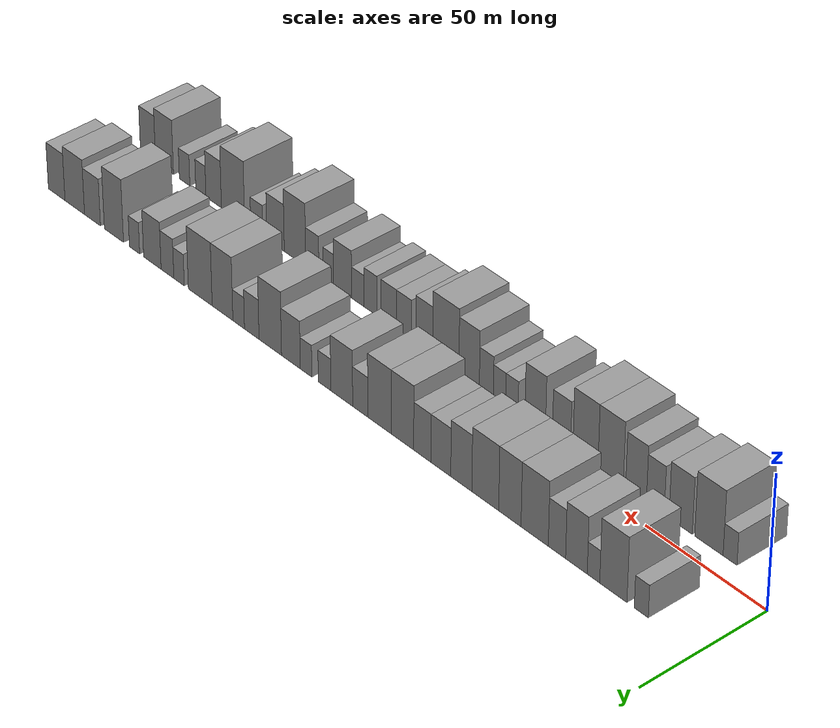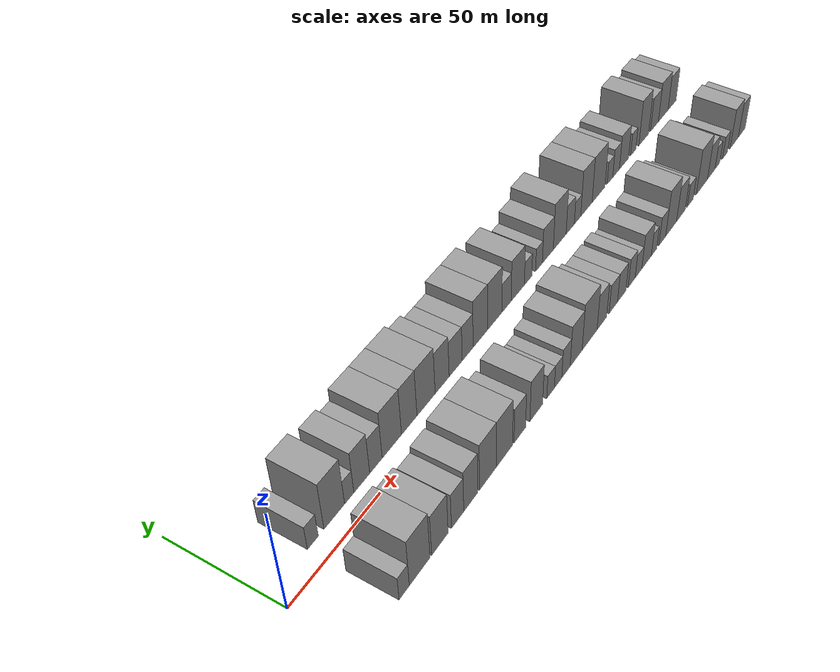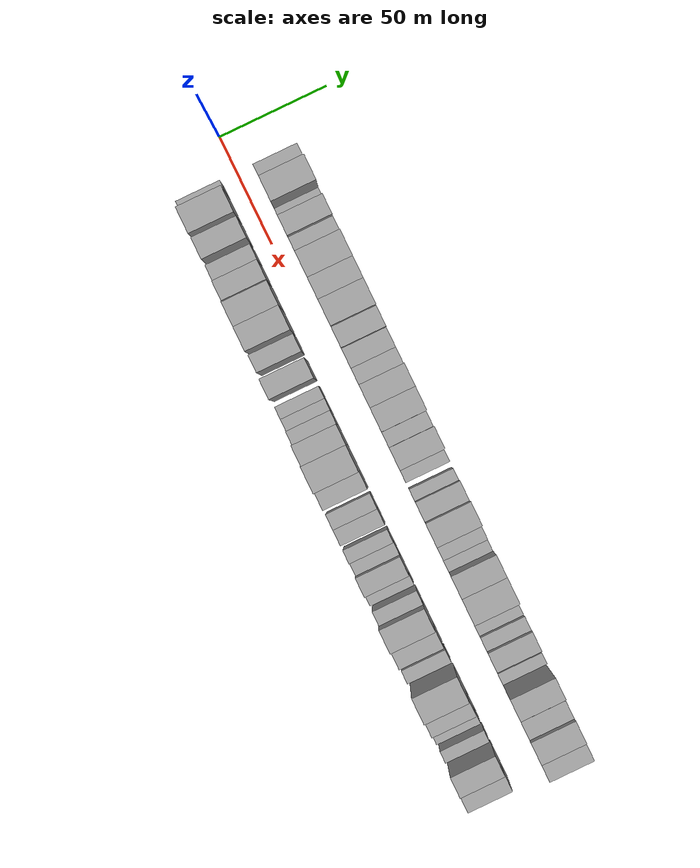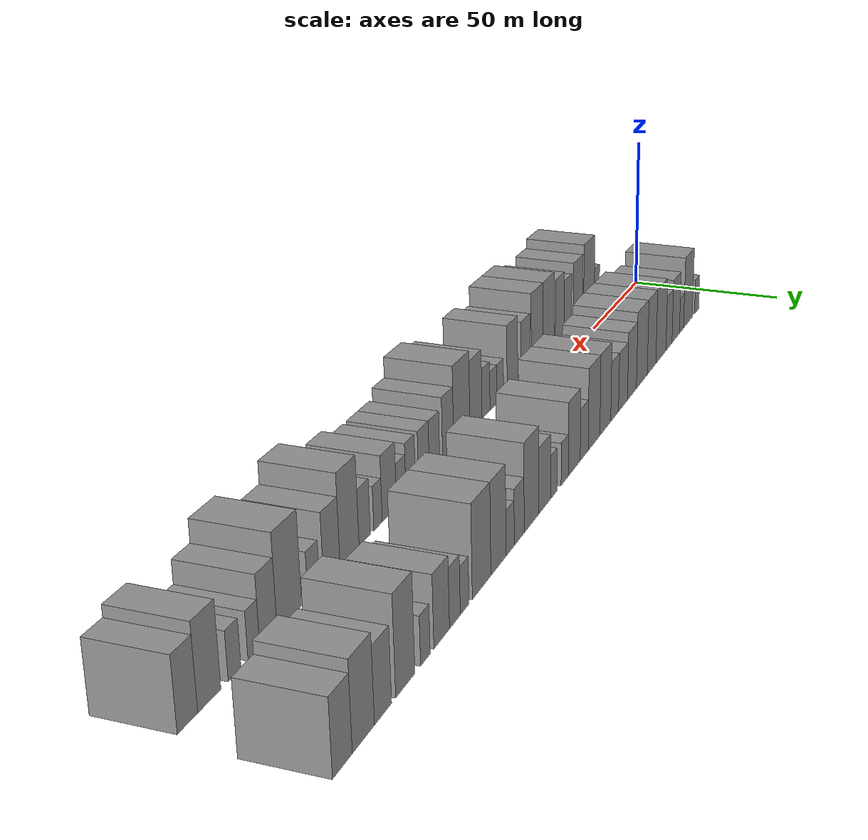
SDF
<sdf version="1.6">
 <world name="default">
  <scene>
   <sky><clouds><speed>12</speed></clouds></sky>
   <ambient>0.4 0.4 0.4 1</ambient>
   <background>0.7 0.7 0.7 1</background>
   <shadows>1</shadows>
  </scene>
  <gravity>0 0 -9.8066</gravity>
  <magnetic_field>6e-06 2.3e-05 -4.2e-05</magnetic_field>
  <physics default="0" name="default_physics" type="ode">
   <ode>
    <solver>
     <type>quick</type>
     <iters>10</iters>
     <sor>1.0</sor>
     <use_dynamic_moi_rescaling>0</use_dynamic_moi_rescaling>
    </solver>
    <constraints>
     <cfm>0</cfm>
     <erp>0.2</erp>
     <contact_max_correcting_vel>100</contact_max_correcting_vel>
     <contact_surface_layer>0.001</contact_surface_layer>
    </constraints>
   </ode>
   <max_step_size>0.004</max_step_size>
   <real_time_factor>1</real_time_factor>
   <real_time_update_rate>250</real_time_update_rate>
  </physics>
  <light name="sun" type="directional">
   <pose>0 0 10 0 0 0</pose>
   <diffuse>0.8 0.8 0.8 1</diffuse>
   <specular>0.2 0.2 0.2 1</specular>
   <attenuation>
    <range>1000</range>
    <constant>0.9</constant>
    <linear>0.01</linear>
    <quadratic>0.001</quadratic>
   </attenuation>
   <direction>-0.5 0.1 -0.9</direction>
  </light>
  <model name="building_1">
   <static>1</static>
   <pose>22.8882 17.5000 0 0.000000 0.000000 1.570796</pose>
   <link name="link">
    <pose>0 0 6.00 0 0 0</pose>
    <collision name="collision"><geometry><box><size>20.0000 5.7763 12.0000</size></box></geometry></collision>
    <visual name="visual">
     <cast_shadows>0</cast_shadows>
     <geometry><box><size>20.0000 5.7763 12.0000</size></box></geometry>
     <material>
      <script>
       <uri>model://grey_wall/materials/scripts</uri>
       <uri>model://grey_wall/materials/textures</uri>
       <name>vrc/grey_wall</name>
      </script>
     </material>
    </visual>
   </link>
  </model>
  <model name="building_2">
   <static>1</static>
   <pose>34.4393 17.5000 0 0.000000 0.000000 1.570796</pose>
   <link name="link">
    <pose>0 0 12.00 0 0 0</pose>
    <collision name="collision"><geometry><box><size>20.0000 11.3260 24.0000</size></box></geometry></collision>
    <visual name="visual">
     <cast_shadows>0</cast_shadows>
     <geometry><box><size>20.0000 11.3260 24.0000</size></box></geometry>
     <material>
      <script>
       <uri>model://grey_wall/materials/scripts</uri>
       <uri>model://grey_wall/materials/textures</uri>
       <name>vrc/grey_wall</name>
      </script>
     </material>
    </visual>
   </link>
  </model>
  <model name="building_3">
   <static>1</static>
   <pose>42.7061 17.5000 0 0.000000 0.000000 1.570796</pose>
   <link name="link">
    <pose>0 0 6.00 0 0 0</pose>
    <collision name="collision"><geometry><box><size>20.0000 5.2077 12.0000</size></box></geometry></collision>
    <visual name="visual">
     <cast_shadows>0</cast_shadows>
     <geometry><box><size>20.0000 5.2077 12.0000</size></box></geometry>
     <material>
      <script>
       <uri>model://grey_wall/materials/scripts</uri>
       <uri>model://grey_wall/materials/textures</uri>
       <name>vrc/grey_wall</name>
      </script>
     </material>
    </visual>
   </link>
  </model>
  <model name="building_4">
   <static>1</static>
   <pose>49.8736 17.5000 0 0.000000 0.000000 1.570796</pose>
   <link name="link">
    <pose>0 0 10.50 0 0 0</pose>
    <collision name="collision"><geometry><box><size>20.0000 9.1274 21.0000</size></box></geometry></collision>
    <visual name="visual">
     <cast_shadows>0</cast_shadows>
     <geometry><box><size>20.0000 9.1274 21.0000</size></box></geometry>
     <material>
      <script>
       <uri>model://grey_wall/materials/scripts</uri>
       <uri>model://grey_wall/materials/textures</uri>
       <name>vrc/grey_wall</name>
      </script>
     </material>
    </visual>
   </link>
  </model>
  <model name="building_5">
   <static>1</static>
   <pose>58.1065 17.5000 0 0.000000 0.000000 1.570796</pose>
   <link name="link">
    <pose>0 0 9.00 0 0 0</pose>
    <collision name="collision"><geometry><box><size>20.0000 7.3383 18.0000</size></box></geometry></collision>
    <visual name="visual">
     <cast_shadows>0</cast_shadows>
     <geometry><box><size>20.0000 7.3383 18.0000</size></box></geometry>
     <material>
      <script>
       <uri>model://grey_wall/materials/scripts</uri>
       <uri>model://grey_wall/materials/textures</uri>
       <name>vrc/grey_wall</name>
      </script>
     </material>
    </visual>
   </link>
  </model>
  <model name="building_6">
   <static>1</static>
   <pose>67.6058 17.5000 0 0.000000 0.000000 1.570796</pose>
   <link name="link">
    <pose>0 0 12.00 0 0 0</pose>
    <collision name="collision"><geometry><box><size>20.0000 11.6603 24.0000</size></box></geometry></collision>
    <visual name="visual">
     <cast_shadows>0</cast_shadows>
     <geometry><box><size>20.0000 11.6603 24.0000</size></box></geometry>
     <material>
      <script>
       <uri>model://grey_wall/materials/scripts</uri>
       <uri>model://grey_wall/materials/textures</uri>
       <name>vrc/grey_wall</name>
      </script>
     </material>
    </visual>
   </link>
  </model>
  <model name="building_7">
   <static>1</static>
   <pose>78.2580 17.5000 0 0.000000 0.000000 1.570796</pose>
   <link name="link">
    <pose>0 0 12.00 0 0 0</pose>
    <collision name="collision"><geometry><box><size>20.0000 9.6441 24.0000</size></box></geometry></collision>
    <visual name="visual">
     <cast_shadows>0</cast_shadows>
     <geometry><box><size>20.0000 9.6441 24.0000</size></box></geometry>
     <material>
      <script>
       <uri>model://grey_wall/materials/scripts</uri>
       <uri>model://grey_wall/materials/textures</uri>
       <name>vrc/grey_wall</name>
      </script>
     </material>
    </visual>
   </link>
  </model>
  <model name="building_8">
   <static>1</static>
   <pose>88.9379 17.5000 0 0.000000 0.000000 1.570796</pose>
   <link name="link">
    <pose>0 0 12.00 0 0 0</pose>
    <collision name="collision"><geometry><box><size>20.0000 11.7156 24.0000</size></box></geometry></collision>
    <visual name="visual">
     <cast_shadows>0</cast_shadows>
     <geometry><box><size>20.0000 11.7156 24.0000</size></box></geometry>
     <material>
      <script>
       <uri>model://grey_wall/materials/scripts</uri>
       <uri>model://grey_wall/materials/textures</uri>
       <name>vrc/grey_wall</name>
      </script>
     </material>
    </visual>
   </link>
  </model>
  <model name="building_9">
   <static>1</static>
   <pose>99.4407 17.5000 0 0.000000 0.000000 1.570796</pose>
   <link name="link">
    <pose>0 0 10.50 0 0 0</pose>
    <collision name="collision"><geometry><box><size>20.0000 9.2900 21.0000</size></box></geometry></collision>
    <visual name="visual">
     <cast_shadows>0</cast_shadows>
     <geometry><box><size>20.0000 9.2900 21.0000</size></box></geometry>
     <material>
      <script>
       <uri>model://grey_wall/materials/scripts</uri>
       <uri>model://grey_wall/materials/textures</uri>
       <name>vrc/grey_wall</name>
      </script>
     </material>
    </visual>
   </link>
  </model>
  <model name="building_10">
   <static>1</static>
   <pose>108.5263 17.5000 0 0.000000 0.000000 1.570796</pose>
   <link name="link">
    <pose>0 0 9.00 0 0 0</pose>
    <collision name="collision"><geometry><box><size>20.0000 8.8813 18.0000</size></box></geometry></collision>
    <visual name="visual">
     <cast_shadows>0</cast_shadows>
     <geometry><box><size>20.0000 8.8813 18.0000</size></box></geometry>
     <material>
      <script>
       <uri>model://grey_wall/materials/scripts</uri>
       <uri>model://grey_wall/materials/textures</uri>
       <name>vrc/grey_wall</name>
      </script>
     </material>
    </visual>
   </link>
  </model>
  <model name="building_11">
   <static>1</static>
   <pose>116.7841 17.5000 0 0.000000 0.000000 1.570796</pose>
   <link name="link">
    <pose>0 0 9.00 0 0 0</pose>
    <collision name="collision"><geometry><box><size>20.0000 7.6343 18.0000</size></box></geometry></collision>
    <visual name="visual">
     <cast_shadows>0</cast_shadows>
     <geometry><box><size>20.0000 7.6343 18.0000</size></box></geometry>
     <material>
      <script>
       <uri>model://grey_wall/materials/scripts</uri>
       <uri>model://grey_wall/materials/textures</uri>
       <name>vrc/grey_wall</name>
      </script>
     </material>
    </visual>
   </link>
  </model>
  <model name="building_12">
   <static>1</static>
   <pose>125.7066 17.5000 0 0.000000 0.000000 1.570796</pose>
   <link name="link">
    <pose>0 0 12.00 0 0 0</pose>
    <collision name="collision"><geometry><box><size>20.0000 10.2106 24.0000</size></box></geometry></collision>
    <visual name="visual">
     <cast_shadows>0</cast_shadows>
     <geometry><box><size>20.0000 10.2106 24.0000</size></box></geometry>
     <material>
      <script>
       <uri>model://grey_wall/materials/scripts</uri>
       <uri>model://grey_wall/materials/textures</uri>
       <name>vrc/grey_wall</name>
      </script>
     </material>
    </visual>
   </link>
  </model>
  <model name="building_13">
   <static>1</static>
   <pose>136.1123 17.5000 0 0.000000 0.000000 1.570796</pose>
   <link name="link">
    <pose>0 0 12.00 0 0 0</pose>
    <collision name="collision"><geometry><box><size>20.0000 10.6009 24.0000</size></box></geometry></collision>
    <visual name="visual">
     <cast_shadows>0</cast_shadows>
     <geometry><box><size>20.0000 10.6009 24.0000</size></box></geometry>
     <material>
      <script>
       <uri>model://grey_wall/materials/scripts</uri>
       <uri>model://grey_wall/materials/textures</uri>
       <name>vrc/grey_wall</name>
      </script>
     </material>
    </visual>
   </link>
  </model>
  <model name="building_14">
   <static>1</static>
   <pose>144.8784 17.5000 0 0.000000 0.000000 1.570796</pose>
   <link name="link">
    <pose>0 0 7.50 0 0 0</pose>
    <collision name="collision"><geometry><box><size>20.0000 6.9312 15.0000</size></box></geometry></collision>
    <visual name="visual">
     <cast_shadows>0</cast_shadows>
     <geometry><box><size>20.0000 6.9312 15.0000</size></box></geometry>
     <material>
      <script>
       <uri>model://grey_wall/materials/scripts</uri>
       <uri>model://grey_wall/materials/textures</uri>
       <name>vrc/grey_wall</name>
      </script>
     </material>
    </visual>
   </link>
  </model>
  <model name="building_15">
   <static>1</static>
   <pose>153.4065 17.5000 0 0.000000 0.000000 1.570796</pose>
   <link name="link">
    <pose>0 0 10.50 0 0 0</pose>
    <collision name="collision"><geometry><box><size>20.0000 10.1251 21.0000</size></box></geometry></collision>
    <visual name="visual">
     <cast_shadows>0</cast_shadows>
     <geometry><box><size>20.0000 10.1251 21.0000</size></box></geometry>
     <material>
      <script>
       <uri>model://grey_wall/materials/scripts</uri>
       <uri>model://grey_wall/materials/textures</uri>
       <name>vrc/grey_wall</name>
      </script>
     </material>
    </visual>
   </link>
  </model>
  <model name="building_16">
   <static>1</static>
   <pose>161.3831 17.5000 0 0.000000 0.000000 1.570796</pose>
   <link name="link">
    <pose>0 0 6.00 0 0 0</pose>
    <collision name="collision"><geometry><box><size>20.0000 5.8283 12.0000</size></box></geometry></collision>
    <visual name="visual">
     <cast_shadows>0</cast_shadows>
     <geometry><box><size>20.0000 5.8283 12.0000</size></box></geometry>
     <material>
      <script>
       <uri>model://grey_wall/materials/scripts</uri>
       <uri>model://grey_wall/materials/textures</uri>
       <name>vrc/grey_wall</name>
      </script>
     </material>
    </visual>
   </link>
  </model>
  <model name="building_17">
   <static>1</static>
   <pose>169.9986 17.5000 0 0.000000 0.000000 1.570796</pose>
   <link name="link">
    <pose>0 0 6.00 0 0 0</pose>
    <collision name="collision"><geometry><box><size>20.0000 5.4027 12.0000</size></box></geometry></collision>
    <visual name="visual">
     <cast_shadows>0</cast_shadows>
     <geometry><box><size>20.0000 5.4027 12.0000</size></box></geometry>
     <material>
      <script>
       <uri>model://grey_wall/materials/scripts</uri>
       <uri>model://grey_wall/materials/textures</uri>
       <name>vrc/grey_wall</name>
      </script>
     </material>
    </visual>
   </link>
  </model>
  <model name="building_18">
   <static>1</static>
   <pose>177.1372 17.5000 0 0.000000 0.000000 1.570796</pose>
   <link name="link">
    <pose>0 0 9.00 0 0 0</pose>
    <collision name="collision"><geometry><box><size>20.0000 8.8744 18.0000</size></box></geometry></collision>
    <visual name="visual">
     <cast_shadows>0</cast_shadows>
     <geometry><box><size>20.0000 8.8744 18.0000</size></box></geometry>
     <material>
      <script>
       <uri>model://grey_wall/materials/scripts</uri>
       <uri>model://grey_wall/materials/textures</uri>
       <name>vrc/grey_wall</name>
      </script>
     </material>
    </visual>
   </link>
  </model>
  <model name="building_19">
   <static>1</static>
   <pose>186.9321 17.5000 0 0.000000 0.000000 1.570796</pose>
   <link name="link">
    <pose>0 0 12.00 0 0 0</pose>
    <collision name="collision"><geometry><box><size>20.0000 10.7153 24.0000</size></box></geometry></collision>
    <visual name="visual">
     <cast_shadows>0</cast_shadows>
     <geometry><box><size>20.0000 10.7153 24.0000</size></box></geometry>
     <material>
      <script>
       <uri>model://grey_wall/materials/scripts</uri>
       <uri>model://grey_wall/materials/textures</uri>
       <name>vrc/grey_wall</name>
      </script>
     </material>
    </visual>
   </link>
  </model>
  <model name="building_20">
   <static>1</static>
   <pose>195.7815 17.5000 0 0.000000 0.000000 1.570796</pose>
   <link name="link">
    <pose>0 0 7.50 0 0 0</pose>
    <collision name="collision"><geometry><box><size>20.0000 6.9834 15.0000</size></box></geometry></collision>
    <visual name="visual">
     <cast_shadows>0</cast_shadows>
     <geometry><box><size>20.0000 6.9834 15.0000</size></box></geometry>
     <material>
      <script>
       <uri>model://grey_wall/materials/scripts</uri>
       <uri>model://grey_wall/materials/textures</uri>
       <name>vrc/grey_wall</name>
      </script>
     </material>
    </visual>
   </link>
  </model>
  <model name="building_21">
   <static>1</static>
   <pose>202.0707 17.5000 0 0.000000 0.000000 1.570796</pose>
   <link name="link">
    <pose>0 0 6.00 0 0 0</pose>
    <collision name="collision"><geometry><box><size>20.0000 5.5950 12.0000</size></box></geometry></collision>
    <visual name="visual">
     <cast_shadows>0</cast_shadows>
     <geometry><box><size>20.0000 5.5950 12.0000</size></box></geometry>
     <material>
      <script>
       <uri>model://grey_wall/materials/scripts</uri>
       <uri>model://grey_wall/materials/textures</uri>
       <name>vrc/grey_wall</name>
      </script>
     </material>
    </visual>
   </link>
  </model>
  <model name="building_22">
   <static>1</static>
   <pose>209.8988 17.5000 0 0.000000 0.000000 1.570796</pose>
   <link name="link">
    <pose>0 0 12.00 0 0 0</pose>
    <collision name="collision"><geometry><box><size>20.0000 10.0612 24.0000</size></box></geometry></collision>
    <visual name="visual">
     <cast_shadows>0</cast_shadows>
     <geometry><box><size>20.0000 10.0612 24.0000</size></box></geometry>
     <material>
      <script>
       <uri>model://grey_wall/materials/scripts</uri>
       <uri>model://grey_wall/materials/textures</uri>
       <name>vrc/grey_wall</name>
      </script>
     </material>
    </visual>
   </link>
  </model>
  <model name="building_23">
   <static>1</static>
   <pose>220.7700 17.5000 0 0.000000 0.000000 1.570796</pose>
   <link name="link">
    <pose>0 0 12.00 0 0 0</pose>
    <collision name="collision"><geometry><box><size>20.0000 11.6812 24.0000</size></box></geometry></collision>
    <visual name="visual">
     <cast_shadows>0</cast_shadows>
     <geometry><box><size>20.0000 11.6812 24.0000</size></box></geometry>
     <material>
      <script>
       <uri>model://grey_wall/materials/scripts</uri>
       <uri>model://grey_wall/materials/textures</uri>
       <name>vrc/grey_wall</name>
      </script>
     </material>
    </visual>
   </link>
  </model>
  <model name="building_24">
   <static>1</static>
   <pose>231.2007 17.5000 0 0.000000 0.000000 1.570796</pose>
   <link name="link">
    <pose>0 0 6.00 0 0 0</pose>
    <collision name="collision"><geometry><box><size>20.0000 5.1802 12.0000</size></box></geometry></collision>
    <visual name="visual">
     <cast_shadows>0</cast_shadows>
     <geometry><box><size>20.0000 5.1802 12.0000</size></box></geometry>
     <material>
      <script>
       <uri>model://grey_wall/materials/scripts</uri>
       <uri>model://grey_wall/materials/textures</uri>
       <name>vrc/grey_wall</name>
      </script>
     </material>
    </visual>
   </link>
  </model>
  <model name="building_25">
   <static>1</static>
   <pose>236.9427 17.5000 0 0.000000 0.000000 1.570796</pose>
   <link name="link">
    <pose>0 0 7.50 0 0 0</pose>
    <collision name="collision"><geometry><box><size>20.0000 6.3038 15.0000</size></box></geometry></collision>
    <visual name="visual">
     <cast_shadows>0</cast_shadows>
     <geometry><box><size>20.0000 6.3038 15.0000</size></box></geometry>
     <material>
      <script>
       <uri>model://grey_wall/materials/scripts</uri>
       <uri>model://grey_wall/materials/textures</uri>
       <name>vrc/grey_wall</name>
      </script>
     </material>
    </visual>
   </link>
  </model>
  <model name="building_26">
   <static>1</static>
   <pose>244.4711 17.5000 0 0.000000 0.000000 1.570796</pose>
   <link name="link">
    <pose>0 0 9.00 0 0 0</pose>
    <collision name="collision"><geometry><box><size>20.0000 8.7531 18.0000</size></box></geometry></collision>
    <visual name="visual">
     <cast_shadows>0</cast_shadows>
     <geometry><box><size>20.0000 8.7531 18.0000</size></box></geometry>
     <material>
      <script>
       <uri>model://grey_wall/materials/scripts</uri>
       <uri>model://grey_wall/materials/textures</uri>
       <name>vrc/grey_wall</name>
      </script>
     </material>
    </visual>
   </link>
  </model>
  <model name="building_27">
   <static>1</static>
   <pose>253.4204 17.5000 0 0.000000 0.000000 1.570796</pose>
   <link name="link">
    <pose>0 0 6.00 0 0 0</pose>
    <collision name="collision"><geometry><box><size>20.0000 5.1455 12.0000</size></box></geometry></collision>
    <visual name="visual">
     <cast_shadows>0</cast_shadows>
     <geometry><box><size>20.0000 5.1455 12.0000</size></box></geometry>
     <material>
      <script>
       <uri>model://grey_wall/materials/scripts</uri>
       <uri>model://grey_wall/materials/textures</uri>
       <name>vrc/grey_wall</name>
      </script>
     </material>
    </visual>
   </link>
  </model>
  <model name="building_28">
   <static>1</static>
   <pose>263.8647 17.5000 0 0.000000 0.000000 1.570796</pose>
   <link name="link">
    <pose>0 0 12.00 0 0 0</pose>
    <collision name="collision"><geometry><box><size>20.0000 9.7432 24.0000</size></box></geometry></collision>
    <visual name="visual">
     <cast_shadows>0</cast_shadows>
     <geometry><box><size>20.0000 9.7432 24.0000</size></box></geometry>
     <material>
      <script>
       <uri>model://grey_wall/materials/scripts</uri>
       <uri>model://grey_wall/materials/textures</uri>
       <name>vrc/grey_wall</name>
      </script>
     </material>
    </visual>
   </link>
  </model>
  <model name="building_29">
   <static>1</static>
   <pose>274.8220 17.5000 0 0.000000 0.000000 1.570796</pose>
   <link name="link">
    <pose>0 0 9.00 0 0 0</pose>
    <collision name="collision"><geometry><box><size>20.0000 8.1714 18.0000</size></box></geometry></collision>
    <visual name="visual">
     <cast_shadows>0</cast_shadows>
     <geometry><box><size>20.0000 8.1714 18.0000</size></box></geometry>
     <material>
      <script>
       <uri>model://grey_wall/materials/scripts</uri>
       <uri>model://grey_wall/materials/textures</uri>
       <name>vrc/grey_wall</name>
      </script>
     </material>
    </visual>
   </link>
  </model>
  <model name="building_30">
   <static>1</static>
   <pose>283.9643 17.5000 0 0.000000 0.000000 1.570796</pose>
   <link name="link">
    <pose>0 0 10.50 0 0 0</pose>
    <collision name="collision"><geometry><box><size>20.0000 10.1132 21.0000</size></box></geometry></collision>
    <visual name="visual">
     <cast_shadows>0</cast_shadows>
     <geometry><box><size>20.0000 10.1132 21.0000</size></box></geometry>
     <material>
      <script>
       <uri>model://grey_wall/materials/scripts</uri>
       <uri>model://grey_wall/materials/textures</uri>
       <name>vrc/grey_wall</name>
      </script>
     </material>
    </visual>
   </link>
  </model>
  <model name="building_31">
   <static>1</static>
   <pose>293.3305 17.5000 0 0.000000 0.000000 1.570796</pose>
   <link name="link">
    <pose>0 0 9.00 0 0 0</pose>
    <collision name="collision"><geometry><box><size>20.0000 8.6192 18.0000</size></box></geometry></collision>
    <visual name="visual">
     <cast_shadows>0</cast_shadows>
     <geometry><box><size>20.0000 8.6192 18.0000</size></box></geometry>
     <material>
      <script>
       <uri>model://grey_wall/materials/scripts</uri>
       <uri>model://grey_wall/materials/textures</uri>
       <name>vrc/grey_wall</name>
      </script>
     </material>
    </visual>
   </link>
  </model>
  <model name="building_32">
   <static>1</static>
   <pose>22.8510 -17.5000 0 0.000000 0.000000 1.570796</pose>
   <link name="link">
    <pose>0 0 6.00 0 0 0</pose>
    <collision name="collision"><geometry><box><size>20.0000 5.7019 12.0000</size></box></geometry></collision>
    <visual name="visual">
     <cast_shadows>0</cast_shadows>
     <geometry><box><size>20.0000 5.7019 12.0000</size></box></geometry>
     <material>
      <script>
       <uri>model://grey_wall/materials/scripts</uri>
       <uri>model://grey_wall/materials/textures</uri>
       <name>vrc/grey_wall</name>
      </script>
     </material>
    </visual>
   </link>
  </model>
  <model name="building_33">
   <static>1</static>
   <pose>31.5597 -17.5000 0 0.000000 0.000000 1.570796</pose>
   <link name="link">
    <pose>0 0 12.00 0 0 0</pose>
    <collision name="collision"><geometry><box><size>20.0000 11.7155 24.0000</size></box></geometry></collision>
    <visual name="visual">
     <cast_shadows>0</cast_shadows>
     <geometry><box><size>20.0000 11.7155 24.0000</size></box></geometry>
     <material>
      <script>
       <uri>model://grey_wall/materials/scripts</uri>
       <uri>model://grey_wall/materials/textures</uri>
       <name>vrc/grey_wall</name>
      </script>
     </material>
    </visual>
   </link>
  </model>
  <model name="building_34">
   <static>1</static>
   <pose>43.2738 -17.5000 0 0.000000 0.000000 1.570796</pose>
   <link name="link">
    <pose>0 0 10.50 0 0 0</pose>
    <collision name="collision"><geometry><box><size>20.0000 9.7128 21.0000</size></box></geometry></collision>
    <visual name="visual">
     <cast_shadows>0</cast_shadows>
     <geometry><box><size>20.0000 9.7128 21.0000</size></box></geometry>
     <material>
      <script>
       <uri>model://grey_wall/materials/scripts</uri>
       <uri>model://grey_wall/materials/textures</uri>
       <name>vrc/grey_wall</name>
      </script>
     </material>
    </visual>
   </link>
  </model>
  <model name="building_35">
   <static>1</static>
   <pose>53.8877 -17.5000 0 0.000000 0.000000 1.570796</pose>
   <link name="link">
    <pose>0 0 9.00 0 0 0</pose>
    <collision name="collision"><geometry><box><size>20.0000 7.5148 18.0000</size></box></geometry></collision>
    <visual name="visual">
     <cast_shadows>0</cast_shadows>
     <geometry><box><size>20.0000 7.5148 18.0000</size></box></geometry>
     <material>
      <script>
       <uri>model://grey_wall/materials/scripts</uri>
       <uri>model://grey_wall/materials/textures</uri>
       <name>vrc/grey_wall</name>
      </script>
     </material>
    </visual>
   </link>
  </model>
  <model name="building_36">
   <static>1</static>
   <pose>62.0545 -17.5000 0 0.000000 0.000000 1.570796</pose>
   <link name="link">
    <pose>0 0 10.50 0 0 0</pose>
    <collision name="collision"><geometry><box><size>20.0000 8.8189 21.0000</size></box></geometry></collision>
    <visual name="visual">
     <cast_shadows>0</cast_shadows>
     <geometry><box><size>20.0000 8.8189 21.0000</size></box></geometry>
     <material>
      <script>
       <uri>model://grey_wall/materials/scripts</uri>
       <uri>model://grey_wall/materials/textures</uri>
       <name>vrc/grey_wall</name>
      </script>
     </material>
    </visual>
   </link>
  </model>
  <model name="building_37">
   <static>1</static>
   <pose>72.8886 -17.5000 0 0.000000 0.000000 1.570796</pose>
   <link name="link">
    <pose>0 0 12.00 0 0 0</pose>
    <collision name="collision"><geometry><box><size>20.0000 10.8493 24.0000</size></box></geometry></collision>
    <visual name="visual">
     <cast_shadows>0</cast_shadows>
     <geometry><box><size>20.0000 10.8493 24.0000</size></box></geometry>
     <material>
      <script>
       <uri>model://grey_wall/materials/scripts</uri>
       <uri>model://grey_wall/materials/textures</uri>
       <name>vrc/grey_wall</name>
      </script>
     </material>
    </visual>
   </link>
  </model>
  <model name="building_38">
   <static>1</static>
   <pose>83.7426 -17.5000 0 0.000000 0.000000 1.570796</pose>
   <link name="link">
    <pose>0 0 12.00 0 0 0</pose>
    <collision name="collision"><geometry><box><size>20.0000 10.8588 24.0000</size></box></geometry></collision>
    <visual name="visual">
     <cast_shadows>0</cast_shadows>
     <geometry><box><size>20.0000 10.8588 24.0000</size></box></geometry>
     <material>
      <script>
       <uri>model://grey_wall/materials/scripts</uri>
       <uri>model://grey_wall/materials/textures</uri>
       <name>vrc/grey_wall</name>
      </script>
     </material>
    </visual>
   </link>
  </model>
  <model name="building_39">
   <static>1</static>
   <pose>94.1570 -17.5000 0 0.000000 0.000000 1.570796</pose>
   <link name="link">
    <pose>0 0 9.00 0 0 0</pose>
    <collision name="collision"><geometry><box><size>20.0000 7.9699 18.0000</size></box></geometry></collision>
    <visual name="visual">
     <cast_shadows>0</cast_shadows>
     <geometry><box><size>20.0000 7.9699 18.0000</size></box></geometry>
     <material>
      <script>
       <uri>model://grey_wall/materials/scripts</uri>
       <uri>model://grey_wall/materials/textures</uri>
       <name>vrc/grey_wall</name>
      </script>
     </material>
    </visual>
   </link>
  </model>
  <model name="building_40">
   <static>1</static>
   <pose>105.6858 -17.5000 0 0.000000 0.000000 1.570796</pose>
   <link name="link">
    <pose>0 0 10.50 0 0 0</pose>
    <collision name="collision"><geometry><box><size>20.0000 9.0878 21.0000</size></box></geometry></collision>
    <visual name="visual">
     <cast_shadows>0</cast_shadows>
     <geometry><box><size>20.0000 9.0878 21.0000</size></box></geometry>
     <material>
      <script>
       <uri>model://grey_wall/materials/scripts</uri>
       <uri>model://grey_wall/materials/textures</uri>
       <name>vrc/grey_wall</name>
      </script>
     </material>
    </visual>
   </link>
  </model>
  <model name="building_41">
   <static>1</static>
   <pose>116.0129 -17.5000 0 0.000000 0.000000 1.570796</pose>
   <link name="link">
    <pose>0 0 6.00 0 0 0</pose>
    <collision name="collision"><geometry><box><size>20.0000 5.5663 12.0000</size></box></geometry></collision>
    <visual name="visual">
     <cast_shadows>0</cast_shadows>
     <geometry><box><size>20.0000 5.5663 12.0000</size></box></geometry>
     <material>
      <script>
       <uri>model://grey_wall/materials/scripts</uri>
       <uri>model://grey_wall/materials/textures</uri>
       <name>vrc/grey_wall</name>
      </script>
     </material>
    </visual>
   </link>
  </model>
  <model name="building_42">
   <static>1</static>
   <pose>121.5412 -17.5000 0 0.000000 0.000000 1.570796</pose>
   <link name="link">
    <pose>0 0 6.00 0 0 0</pose>
    <collision name="collision"><geometry><box><size>20.0000 5.4905 12.0000</size></box></geometry></collision>
    <visual name="visual">
     <cast_shadows>0</cast_shadows>
     <geometry><box><size>20.0000 5.4905 12.0000</size></box></geometry>
     <material>
      <script>
       <uri>model://grey_wall/materials/scripts</uri>
       <uri>model://grey_wall/materials/textures</uri>
       <name>vrc/grey_wall</name>
      </script>
     </material>
    </visual>
   </link>
  </model>
  <model name="building_43">
   <static>1</static>
   <pose>127.4360 -17.5000 0 0.000000 0.000000 1.570796</pose>
   <link name="link">
    <pose>0 0 7.50 0 0 0</pose>
    <collision name="collision"><geometry><box><size>20.0000 6.2991 15.0000</size></box></geometry></collision>
    <visual name="visual">
     <cast_shadows>0</cast_shadows>
     <geometry><box><size>20.0000 6.2991 15.0000</size></box></geometry>
     <material>
      <script>
       <uri>model://grey_wall/materials/scripts</uri>
       <uri>model://grey_wall/materials/textures</uri>
       <name>vrc/grey_wall</name>
      </script>
     </material>
    </visual>
   </link>
  </model>
  <model name="building_44">
   <static>1</static>
   <pose>135.2153 -17.5000 0 0.000000 0.000000 1.570796</pose>
   <link name="link">
    <pose>0 0 10.50 0 0 0</pose>
    <collision name="collision"><geometry><box><size>20.0000 9.2594 21.0000</size></box></geometry></collision>
    <visual name="visual">
     <cast_shadows>0</cast_shadows>
     <geometry><box><size>20.0000 9.2594 21.0000</size></box></geometry>
     <material>
      <script>
       <uri>model://grey_wall/materials/scripts</uri>
       <uri>model://grey_wall/materials/textures</uri>
       <name>vrc/grey_wall</name>
      </script>
     </material>
    </visual>
   </link>
  </model>
  <model name="building_45">
   <static>1</static>
   <pose>145.8068 -17.5000 0 0.000000 0.000000 1.570796</pose>
   <link name="link">
    <pose>0 0 12.00 0 0 0</pose>
    <collision name="collision"><geometry><box><size>20.0000 11.9236 24.0000</size></box></geometry></collision>
    <visual name="visual">
     <cast_shadows>0</cast_shadows>
     <geometry><box><size>20.0000 11.9236 24.0000</size></box></geometry>
     <material>
      <script>
       <uri>model://grey_wall/materials/scripts</uri>
       <uri>model://grey_wall/materials/textures</uri>
       <name>vrc/grey_wall</name>
      </script>
     </material>
    </visual>
   </link>
  </model>
  <model name="building_46">
   <static>1</static>
   <pose>155.6874 -17.5000 0 0.000000 0.000000 1.570796</pose>
   <link name="link">
    <pose>0 0 9.00 0 0 0</pose>
    <collision name="collision"><geometry><box><size>20.0000 7.8378 18.0000</size></box></geometry></collision>
    <visual name="visual">
     <cast_shadows>0</cast_shadows>
     <geometry><box><size>20.0000 7.8378 18.0000</size></box></geometry>
     <material>
      <script>
       <uri>model://grey_wall/materials/scripts</uri>
       <uri>model://grey_wall/materials/textures</uri>
       <name>vrc/grey_wall</name>
      </script>
     </material>
    </visual>
   </link>
  </model>
  <model name="building_47">
   <static>1</static>
   <pose>165.1474 -17.5000 0 0.000000 0.000000 1.570796</pose>
   <link name="link">
    <pose>0 0 7.50 0 0 0</pose>
    <collision name="collision"><geometry><box><size>20.0000 7.0821 15.0000</size></box></geometry></collision>
    <visual name="visual">
     <cast_shadows>0</cast_shadows>
     <geometry><box><size>20.0000 7.0821 15.0000</size></box></geometry>
     <material>
      <script>
       <uri>model://grey_wall/materials/scripts</uri>
       <uri>model://grey_wall/materials/textures</uri>
       <name>vrc/grey_wall</name>
      </script>
     </material>
    </visual>
   </link>
  </model>
  <model name="building_48">
   <static>1</static>
   <pose>172.2481 -17.5000 0 0.000000 0.000000 1.570796</pose>
   <link name="link">
    <pose>0 0 7.50 0 0 0</pose>
    <collision name="collision"><geometry><box><size>20.0000 7.1193 15.0000</size></box></geometry></collision>
    <visual name="visual">
     <cast_shadows>0</cast_shadows>
     <geometry><box><size>20.0000 7.1193 15.0000</size></box></geometry>
     <material>
      <script>
       <uri>model://grey_wall/materials/scripts</uri>
       <uri>model://grey_wall/materials/textures</uri>
       <name>vrc/grey_wall</name>
      </script>
     </material>
    </visual>
   </link>
  </model>
  <model name="building_49">
   <static>1</static>
   <pose>180.8429 -17.5000 0 0.000000 0.000000 1.570796</pose>
   <link name="link">
    <pose>0 0 7.50 0 0 0</pose>
    <collision name="collision"><geometry><box><size>20.0000 6.0702 15.0000</size></box></geometry></collision>
    <visual name="visual">
     <cast_shadows>0</cast_shadows>
     <geometry><box><size>20.0000 6.0702 15.0000</size></box></geometry>
     <material>
      <script>
       <uri>model://grey_wall/materials/scripts</uri>
       <uri>model://grey_wall/materials/textures</uri>
       <name>vrc/grey_wall</name>
      </script>
     </material>
    </visual>
   </link>
  </model>
  <model name="building_50">
   <static>1</static>
   <pose>186.8182 -17.5000 0 0.000000 0.000000 1.570796</pose>
   <link name="link">
    <pose>0 0 6.00 0 0 0</pose>
    <collision name="collision"><geometry><box><size>20.0000 5.8804 12.0000</size></box></geometry></collision>
    <visual name="visual">
     <cast_shadows>0</cast_shadows>
     <geometry><box><size>20.0000 5.8804 12.0000</size></box></geometry>
     <material>
      <script>
       <uri>model://grey_wall/materials/scripts</uri>
       <uri>model://grey_wall/materials/textures</uri>
       <name>vrc/grey_wall</name>
      </script>
     </material>
    </visual>
   </link>
  </model>
  <model name="building_51">
   <static>1</static>
   <pose>194.0684 -17.5000 0 0.000000 0.000000 1.570796</pose>
   <link name="link">
    <pose>0 0 9.00 0 0 0</pose>
    <collision name="collision"><geometry><box><size>20.0000 8.6200 18.0000</size></box></geometry></collision>
    <visual name="visual">
     <cast_shadows>0</cast_shadows>
     <geometry><box><size>20.0000 8.6200 18.0000</size></box></geometry>
     <material>
      <script>
       <uri>model://grey_wall/materials/scripts</uri>
       <uri>model://grey_wall/materials/textures</uri>
       <name>vrc/grey_wall</name>
      </script>
     </material>
    </visual>
   </link>
  </model>
  <model name="building_52">
   <static>1</static>
   <pose>200.8702 -17.5000 0 0.000000 0.000000 1.570796</pose>
   <link name="link">
    <pose>0 0 6.00 0 0 0</pose>
    <collision name="collision"><geometry><box><size>20.0000 4.9835 12.0000</size></box></geometry></collision>
    <visual name="visual">
     <cast_shadows>0</cast_shadows>
     <geometry><box><size>20.0000 4.9835 12.0000</size></box></geometry>
     <material>
      <script>
       <uri>model://grey_wall/materials/scripts</uri>
       <uri>model://grey_wall/materials/textures</uri>
       <name>vrc/grey_wall</name>
      </script>
     </material>
    </visual>
   </link>
  </model>
  <model name="building_53">
   <static>1</static>
   <pose>208.5510 -17.5000 0 0.000000 0.000000 1.570796</pose>
   <link name="link">
    <pose>0 0 7.50 0 0 0</pose>
    <collision name="collision"><geometry><box><size>20.0000 6.3781 15.0000</size></box></geometry></collision>
    <visual name="visual">
     <cast_shadows>0</cast_shadows>
     <geometry><box><size>20.0000 6.3781 15.0000</size></box></geometry>
     <material>
      <script>
       <uri>model://grey_wall/materials/scripts</uri>
       <uri>model://grey_wall/materials/textures</uri>
       <name>vrc/grey_wall</name>
      </script>
     </material>
    </visual>
   </link>
  </model>
  <model name="building_54">
   <static>1</static>
   <pose>216.9465 -17.5000 0 0.000000 0.000000 1.570796</pose>
   <link name="link">
    <pose>0 0 12.00 0 0 0</pose>
    <collision name="collision"><geometry><box><size>20.0000 10.4130 24.0000</size></box></geometry></collision>
    <visual name="visual">
     <cast_shadows>0</cast_shadows>
     <geometry><box><size>20.0000 10.4130 24.0000</size></box></geometry>
     <material>
      <script>
       <uri>model://grey_wall/materials/scripts</uri>
       <uri>model://grey_wall/materials/textures</uri>
       <name>vrc/grey_wall</name>
      </script>
     </material>
    </visual>
   </link>
  </model>
  <model name="building_55">
   <static>1</static>
   <pose>226.4328 -17.5000 0 0.000000 0.000000 1.570796</pose>
   <link name="link">
    <pose>0 0 9.00 0 0 0</pose>
    <collision name="collision"><geometry><box><size>20.0000 8.5596 18.0000</size></box></geometry></collision>
    <visual name="visual">
     <cast_shadows>0</cast_shadows>
     <geometry><box><size>20.0000 8.5596 18.0000</size></box></geometry>
     <material>
      <script>
       <uri>model://grey_wall/materials/scripts</uri>
       <uri>model://grey_wall/materials/textures</uri>
       <name>vrc/grey_wall</name>
      </script>
     </material>
    </visual>
   </link>
  </model>
  <model name="building_56">
   <static>1</static>
   <pose>235.6912 -17.5000 0 0.000000 0.000000 1.570796</pose>
   <link name="link">
    <pose>0 0 6.00 0 0 0</pose>
    <collision name="collision"><geometry><box><size>20.0000 5.9573 12.0000</size></box></geometry></collision>
    <visual name="visual">
     <cast_shadows>0</cast_shadows>
     <geometry><box><size>20.0000 5.9573 12.0000</size></box></geometry>
     <material>
      <script>
       <uri>model://grey_wall/materials/scripts</uri>
       <uri>model://grey_wall/materials/textures</uri>
       <name>vrc/grey_wall</name>
      </script>
     </material>
    </visual>
   </link>
  </model>
  <model name="building_57">
   <static>1</static>
   <pose>247.4718 -17.5000 0 0.000000 0.000000 1.570796</pose>
   <link name="link">
    <pose>0 0 12.00 0 0 0</pose>
    <collision name="collision"><geometry><box><size>20.0000 11.6039 24.0000</size></box></geometry></collision>
    <visual name="visual">
     <cast_shadows>0</cast_shadows>
     <geometry><box><size>20.0000 11.6039 24.0000</size></box></geometry>
     <material>
      <script>
       <uri>model://grey_wall/materials/scripts</uri>
       <uri>model://grey_wall/materials/textures</uri>
       <name>vrc/grey_wall</name>
      </script>
     </material>
    </visual>
   </link>
  </model>
  <model name="building_58">
   <static>1</static>
   <pose>257.1645 -17.5000 0 0.000000 0.000000 1.570796</pose>
   <link name="link">
    <pose>0 0 9.00 0 0 0</pose>
    <collision name="collision"><geometry><box><size>20.0000 7.7815 18.0000</size></box></geometry></collision>
    <visual name="visual">
     <cast_shadows>0</cast_shadows>
     <geometry><box><size>20.0000 7.7815 18.0000</size></box></geometry>
     <material>
      <script>
       <uri>model://grey_wall/materials/scripts</uri>
       <uri>model://grey_wall/materials/textures</uri>
       <name>vrc/grey_wall</name>
      </script>
     </material>
    </visual>
   </link>
  </model>
  <model name="building_59">
   <static>1</static>
   <pose>263.6252 -17.5000 0 0.000000 0.000000 1.570796</pose>
   <link name="link">
    <pose>0 0 6.00 0 0 0</pose>
    <collision name="collision"><geometry><box><size>20.0000 5.1400 12.0000</size></box></geometry></collision>
    <visual name="visual">
     <cast_shadows>0</cast_shadows>
     <geometry><box><size>20.0000 5.1400 12.0000</size></box></geometry>
     <material>
      <script>
       <uri>model://grey_wall/materials/scripts</uri>
       <uri>model://grey_wall/materials/textures</uri>
       <name>vrc/grey_wall</name>
      </script>
     </material>
    </visual>
   </link>
  </model>
  <model name="building_60">
   <static>1</static>
   <pose>271.8754 -17.5000 0 0.000000 0.000000 1.570796</pose>
   <link name="link">
    <pose>0 0 6.00 0 0 0</pose>
    <collision name="collision"><geometry><box><size>20.0000 5.3603 12.0000</size></box></geometry></collision>
    <visual name="visual">
     <cast_shadows>0</cast_shadows>
     <geometry><box><size>20.0000 5.3603 12.0000</size></box></geometry>
     <material>
      <script>
       <uri>model://grey_wall/materials/scripts</uri>
       <uri>model://grey_wall/materials/textures</uri>
       <name>vrc/grey_wall</name>
      </script>
     </material>
    </visual>
   </link>
  </model>
  <model name="building_61">
   <static>1</static>
   <pose>282.1498 -17.5000 0 0.000000 0.000000 1.570796</pose>
   <link name="link">
    <pose>0 0 10.50 0 0 0</pose>
    <collision name="collision"><geometry><box><size>20.0000 9.1885 21.0000</size></box></geometry></collision>
    <visual name="visual">
     <cast_shadows>0</cast_shadows>
     <geometry><box><size>20.0000 9.1885 21.0000</size></box></geometry>
     <material>
      <script>
       <uri>model://grey_wall/materials/scripts</uri>
       <uri>model://grey_wall/materials/textures</uri>
       <name>vrc/grey_wall</name>
      </script>
     </material>
    </visual>
   </link>
  </model>
  <model name="building_62">
   <static>1</static>
   <pose>290.6338 -17.5000 0 0.000000 0.000000 1.570796</pose>
   <link name="link">
    <pose>0 0 9.00 0 0 0</pose>
    <collision name="collision"><geometry><box><size>20.0000 7.7795 18.0000</size></box></geometry></collision>
    <visual name="visual">
     <cast_shadows>0</cast_shadows>
     <geometry><box><size>20.0000 7.7795 18.0000</size></box></geometry>
     <material>
      <script>
       <uri>model://grey_wall/materials/scripts</uri>
       <uri>model://grey_wall/materials/textures</uri>
       <name>vrc/grey_wall</name>
      </script>
     </material>
    </visual>
   </link>
  </model>
 </world>
</sdf>
